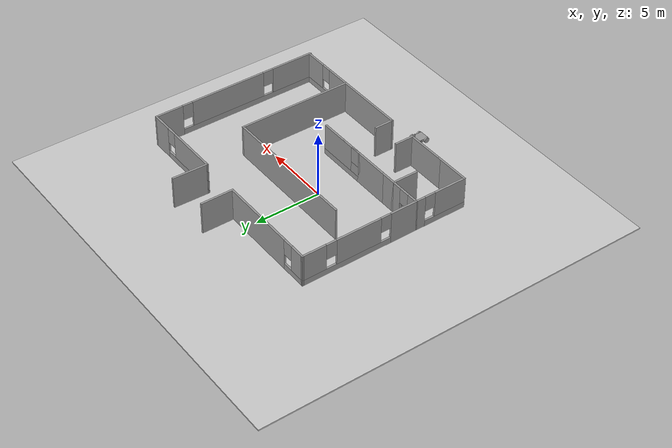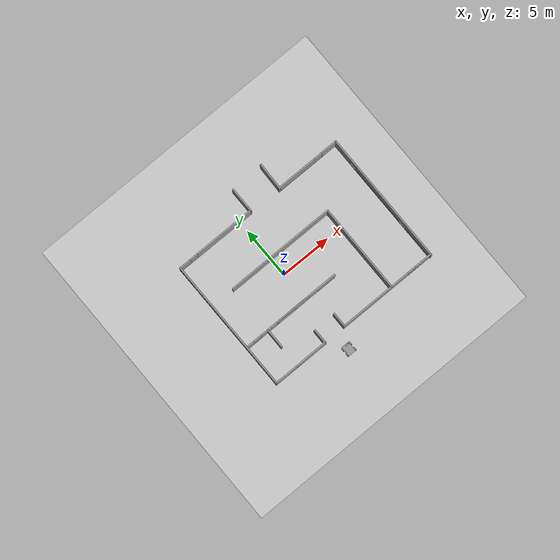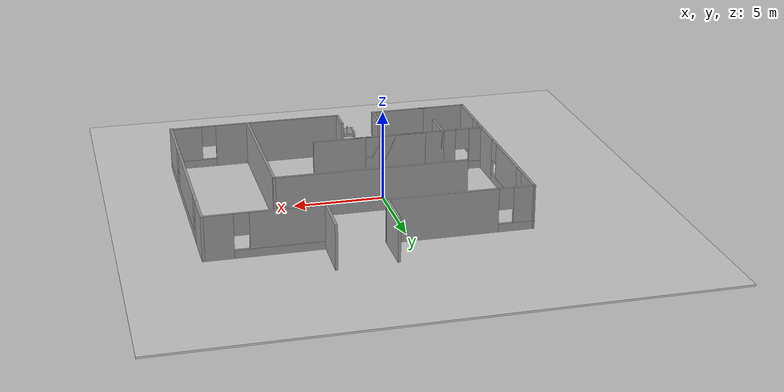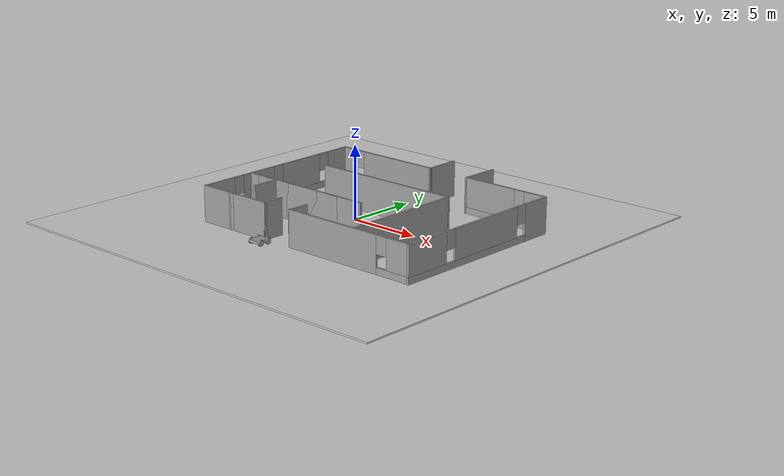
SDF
<?xml version="1.0" ?>

<sdf version="1.6">
  <world name="visualize_lidar_world">
    <physics name="1ms" type="ignored">
      <max_step_size>0.001</max_step_size>
      <real_time_factor>1.0</real_time_factor>
    </physics>
    <plugin
      filename="libignition-gazebo-physics-system.so"
      name="ignition::gazebo::systems::Physics">
    </plugin>
    <plugin
      filename="libignition-gazebo-sensors-system.so"
      name="ignition::gazebo::systems::Sensors">
      <render_engine>ogre2</render_engine>
    </plugin>
    <plugin
      filename="libignition-gazebo-scene-broadcaster-system.so"
      name="ignition::gazebo::systems::SceneBroadcaster">
    </plugin>

    <gui fullscreen="0">

      <!-- 3D scene -->
      <plugin filename="MinimalScene" name="3D View">
        <ignition-gui>
          <title>3D View</title>
          <property type="bool" key="showTitleBar">false</property>
          <property type="string" key="state">docked</property>
        </ignition-gui>

        <engine>ogre2</engine>
        <scene>scene</scene>
        <ambient_light>0.4 0.4 0.4</ambient_light>
        <background_color>0.8 0.8 0.8</background_color>
        <camera_pose>-6 0 6 0 0.5 0</camera_pose>
      </plugin>

      <!-- Plugins that add functionality to the scene -->
      <plugin filename="EntityContextMenuPlugin" name="Entity context menu">
        <ignition-gui>
          <property key="state" type="string">floating</property>
          <property key="width" type="double">5</property>
          <property key="height" type="double">5</property>
          <property key="showTitleBar" type="bool">false</property>
        </ignition-gui>
      </plugin>
      <plugin filename="GzSceneManager" name="Scene Manager">
        <ignition-gui>
          <property key="resizable" type="bool">false</property>
          <property key="width" type="double">5</property>
          <property key="height" type="double">5</property>
          <property key="state" type="string">floating</property>
          <property key="showTitleBar" type="bool">false</property>
        </ignition-gui>
      </plugin>
      <plugin filename="InteractiveViewControl" name="Interactive view control">
        <ignition-gui>
          <property key="resizable" type="bool">false</property>
          <property key="width" type="double">5</property>
          <property key="height" type="double">5</property>
          <property key="state" type="string">floating</property>
          <property key="showTitleBar" type="bool">false</property>
        </ignition-gui>
      </plugin>
      <plugin filename="CameraTracking" name="Camera Tracking">
        <ignition-gui>
          <property key="resizable" type="bool">false</property>
          <property key="width" type="double">5</property>
          <property key="height" type="double">5</property>
          <property key="state" type="string">floating</property>
          <property key="showTitleBar" type="bool">false</property>
        </ignition-gui>
      </plugin>
      <!-- World control -->
      <plugin filename="WorldControl" name="World control">
        <ignition-gui>
          <title>World control</title>
          <property type="bool" key="showTitleBar">false</property>
          <property type="bool" key="resizable">false</property>
          <property type="double" key="height">72</property>
          <property type="double" key="width">121</property>
          <property type="double" key="z">1</property>

          <property type="string" key="state">floating</property>
          <anchors target="3D View">
            <line own="left" target="left"/>
            <line own="bottom" target="bottom"/>
          </anchors>
        </ignition-gui>

        <play_pause>true</play_pause>
        <step>true</step>
        <start_paused>true</start_paused>
        <use_event>true</use_event>

      </plugin>

      <!-- World statistics -->
      <plugin filename="WorldStats" name="World stats">
        <ignition-gui>
          <title>World stats</title>
          <property type="bool" key="showTitleBar">false</property>
          <property type="bool" key="resizable">false</property>
          <property type="double" key="height">110</property>
          <property type="double" key="width">290</property>
          <property type="double" key="z">1</property>

          <property type="string" key="state">floating</property>
          <anchors target="3D View">
            <line own="right" target="right"/>
            <line own="bottom" target="bottom"/>
          </anchors>
        </ignition-gui>

        <sim_time>true</sim_time>
        <real_time>true</real_time>
        <real_time_factor>true</real_time_factor>
        <iterations>true</iterations>
      </plugin>

      <plugin filename="ImageDisplay" name="Image Display">
        <ignition-gui>
          <property key="state" type="string">docked</property>
        </ignition-gui>
      </plugin>

      <!-- Inspector -->
      <plugin filename="ComponentInspector" name="Component inspector">
        <ignition-gui>
          <property type="string" key="state">docked</property>
        </ignition-gui>
      </plugin>

      <!-- Entity tree -->
      <plugin filename="EntityTree" name="Entity tree">
        <ignition-gui>
          <property type="string" key="state">docked</property>
        </ignition-gui>
      </plugin>

      <plugin filename="VisualizeLidar" name="Visualize Lidar">
      </plugin>

    </gui>

    <light type="directional" name="sun">
      <cast_shadows>true</cast_shadows>
      <pose>0 0 10 0 0 0</pose>
      <diffuse>0.8 0.8 0.8 1</diffuse>
      <specular>0.2 0.2 0.2 1</specular>
      <attenuation>
        <range>1000</range>
        <constant>0.9</constant>
        <linear>0.01</linear>
        <quadratic>0.001</quadratic>
      </attenuation>
      <direction>-0.5 0.1 -0.9</direction>
    </light>

    <model name="ground_plane">
      <static>true</static>
      <link name="link">
        <collision name="collision">
          <geometry>
            <box>
              <size>30 30 0.1</size>
            </box>
          </geometry>
        </collision>
        <visual name="visual">
          <geometry>
            <box>
              <size>30 30 0.1</size>
            </box>
          </geometry>
          <material>
            <ambient>0.8 0.8 0.8 1</ambient>
            <diffuse>0.8 0.8 0.8 1</diffuse>
            <specular>0.8 0.8 0.8 1</specular>
          </material>
        </visual>
      </link>
    </model>

    <!-- My own robot -->
    <include>
        <pose>0 -8.5 1 0 0 1.57</pose>
        <uri>../models/land_robot</uri>
    </include>

    <!-- A playground -->

  <model name='Laberint'>
    <pose>2.05042 0.753959 0 0 -0 0</pose>
    <link name='Wall_0'>
      <collision name='Wall_0_Collision'>
        <geometry>
          <box>
            <size>3.27302 0.15 2.5</size>
          </box>
        </geometry>
        <pose>0 0 1.25 0 -0 0</pose>
      </collision>
      <visual name='Wall_0_Visual'>
        <pose>0 0 1.25 0 -0 0</pose>
        <geometry>
          <box>
            <size>3.27302 0.15 2.5</size>
          </box>
        </geometry>
        <material>
          <script>
            <uri>file://media/materials/scripts/gazebo.material</uri>
            <name>Gazebo/Grey</name>
          </script>
          <ambient>1 1 1 1</ambient>
        </material>
        <meta>
          <layer>0</layer>
        </meta>
      </visual>
      <pose>-4.74364 -7.69515 0 0 -0 0.003682</pose>
    </link>
    <link name='Wall_1'>
      <collision name='Wall_1_Collision'>
        <geometry>
          <box>
            <size>1.5 0.15 2.5</size>
          </box>
        </geometry>
        <pose>0 0 1.25 0 -0 0</pose>
      </collision>
      <visual name='Wall_1_Visual'>
        <pose>0 0 1.25 0 -0 0</pose>
        <geometry>
          <box>
            <size>1.5 0.15 2.5</size>
          </box>
        </geometry>
        <material>
          <script>
            <uri>file://media/materials/scripts/gazebo.material</uri>
            <name>Gazebo/Grey</name>
          </script>
          <ambient>1 1 1 1</ambient>
        </material>
        <meta>
          <layer>0</layer>
        </meta>
      </visual>
      <pose>-3.19963 -7.0144 0 0 -0 1.5708</pose>
    </link>
    <link name='Wall_10'>
      <collision name='Wall_10_Collision'>
        <geometry>
          <box>
            <size>4.5 0.15 2.5</size>
          </box>
        </geometry>
        <pose>0 0 1.25 0 -0 0</pose>
      </collision>
      <visual name='Wall_10_Visual'>
        <pose>0 0 1.25 0 -0 0</pose>
        <geometry>
          <box>
            <size>4.5 0.15 2.5</size>
          </box>
        </geometry>
        <material>
          <script>
            <uri>file://media/materials/scripts/gazebo.material</uri>
            <name>Gazebo/Grey</name>
          </script>
          <ambient>1 1 1 1</ambient>
        </material>
        <meta>
          <layer>0</layer>
        </meta>
      </visual>
      <pose>-3.02986 -3.71139 0 0 -0 3.14159</pose>
    </link>
    <link name='Wall_11'>
      <pose>-2.02986 -3.71139 0 0 -0 0</pose>
      <visual name='Wall_11_Visual_0'>
        <pose>-1.89341 0 1.25 0 -0 0</pose>
        <geometry>
          <box>
            <size>2.71319 0.15 2.5</size>
          </box>
        </geometry>
        <material>
          <script>
            <uri>file://media/materials/scripts/gazebo.material</uri>
            <name>Gazebo/Grey</name>
          </script>
          <ambient>1 1 1 1</ambient>
        </material>
        <meta>
          <layer>0</layer>
        </meta>
      </visual>
      <collision name='Wall_11_Collision_0'>
        <geometry>
          <box>
            <size>2.71319 0.15 2.5</size>
          </box>
        </geometry>
        <pose>-1.89341 0 1.25 0 -0 0</pose>
      </collision>
      <visual name='Wall_11_Visual_1'>
        <pose>1.35659 0 0.25 0 -0 0</pose>
        <geometry>
          <box>
            <size>3.78681 0.15 0.5</size>
          </box>
        </geometry>
        <material>
          <script>
            <uri>file://media/materials/scripts/gazebo.material</uri>
            <name>Gazebo/Grey</name>
          </script>
          <ambient>1 1 1 1</ambient>
        </material>
        <meta>
          <layer>0</layer>
        </meta>
      </visual>
      <collision name='Wall_11_Collision_1'>
        <geometry>
          <box>
            <size>3.78681 0.15 0.5</size>
          </box>
        </geometry>
        <pose>1.35659 0 0.25 0 -0 0</pose>
      </collision>
      <visual name='Wall_11_Visual_2'>
        <pose>1.75659 0 1.5 0 -0 0</pose>
        <geometry>
          <box>
            <size>2.98681 0.15 2</size>
          </box>
        </geometry>
        <material>
          <script>
            <uri>file://media/materials/scripts/gazebo.material</uri>
            <name>Gazebo/Grey</name>
          </script>
          <ambient>1 1 1 1</ambient>
        </material>
        <meta>
          <layer>0</layer>
        </meta>
      </visual>
      <collision name='Wall_11_Collision_2'>
        <geometry>
          <box>
            <size>2.98681 0.15 2</size>
          </box>
        </geometry>
        <pose>1.75659 0 1.5 0 -0 0</pose>
      </collision>
      <visual name='Wall_11_Visual_3'>
        <pose>-0.136812 0 1.9 0 -0 0</pose>
        <geometry>
          <box>
            <size>0.8 0.15 1.2</size>
          </box>
        </geometry>
        <material>
          <script>
            <uri>file://media/materials/scripts/gazebo.material</uri>
            <name>Gazebo/Grey</name>
          </script>
          <ambient>1 1 1 1</ambient>
        </material>
        <meta>
          <layer>0</layer>
        </meta>
      </visual>
      <collision name='Wall_11_Collision_3'>
        <geometry>
          <box>
            <size>0.8 0.15 1.2</size>
          </box>
        </geometry>
        <pose>-0.136812 0 1.9 0 -0 0</pose>
      </collision>
    </link>
    <link name='Wall_14'>
      <collision name='Wall_14_Collision'>
        <geometry>
          <box>
            <size>1.25 0.15 2.5</size>
          </box>
        </geometry>
        <pose>0 0 1.25 0 -0 0</pose>
      </collision>
      <visual name='Wall_14_Visual'>
        <pose>0 0 1.25 0 -0 0</pose>
        <geometry>
          <box>
            <size>1.25 0.15 2.5</size>
          </box>
        </geometry>
        <material>
          <script>
            <uri>file://media/materials/scripts/gazebo.material</uri>
            <name>Gazebo/Grey</name>
          </script>
          <ambient>1 1 1 1</ambient>
        </material>
        <meta>
          <layer>0</layer>
        </meta>
      </visual>
      <pose>-5.75486 -3.71139 0 0 -0 3.14159</pose>
    </link>
    <link name='Wall_15'>
      <collision name='Wall_15_Collision'>
        <geometry>
          <box>
            <size>2 0.15 2.5</size>
          </box>
        </geometry>
        <pose>0 0 1.25 0 -0 0</pose>
      </collision>
      <visual name='Wall_15_Visual'>
        <pose>0 0 1.25 0 -0 0</pose>
        <geometry>
          <box>
            <size>2 0.15 2.5</size>
          </box>
        </geometry>
        <material>
          <script>
            <uri>file://media/materials/scripts/gazebo.material</uri>
            <name>Gazebo/Grey</name>
          </script>
          <ambient>1 1 1 1</ambient>
        </material>
        <meta>
          <layer>0</layer>
        </meta>
      </visual>
      <pose>-6.30486 -4.63639 0 0 -0 -1.5708</pose>
    </link>
    <link name='Wall_17'>
      <pose>-7.47986 -3.71139 0 0 -0 3.14159</pose>
      <visual name='Wall_17_Visual_0'>
        <pose>-0.833139 0 1.25 0 -0 0</pose>
        <geometry>
          <box>
            <size>0.833722 0.15 2.5</size>
          </box>
        </geometry>
        <material>
          <script>
            <uri>file://media/materials/scripts/gazebo.material</uri>
            <name>Gazebo/Grey</name>
          </script>
          <ambient>1 1 1 1</ambient>
        </material>
        <meta>
          <layer>0</layer>
        </meta>
      </visual>
      <collision name='Wall_17_Collision_0'>
        <geometry>
          <box>
            <size>0.833722 0.15 2.5</size>
          </box>
        </geometry>
        <pose>-0.833139 0 1.25 0 -0 0</pose>
      </collision>
      <visual name='Wall_17_Visual_1'>
        <pose>0.416861 0 0.25 0 -0 0</pose>
        <geometry>
          <box>
            <size>1.66628 0.15 0.5</size>
          </box>
        </geometry>
        <material>
          <script>
            <uri>file://media/materials/scripts/gazebo.material</uri>
            <name>Gazebo/Grey</name>
          </script>
          <ambient>1 1 1 1</ambient>
        </material>
        <meta>
          <layer>0</layer>
        </meta>
      </visual>
      <collision name='Wall_17_Collision_1'>
        <geometry>
          <box>
            <size>1.66628 0.15 0.5</size>
          </box>
        </geometry>
        <pose>0.416861 0 0.25 0 -0 0</pose>
      </collision>
      <visual name='Wall_17_Visual_2'>
        <pose>0.816861 0 1.5 0 -0 0</pose>
        <geometry>
          <box>
            <size>0.866278 0.15 2</size>
          </box>
        </geometry>
        <material>
          <script>
            <uri>file://media/materials/scripts/gazebo.material</uri>
            <name>Gazebo/Grey</name>
          </script>
          <ambient>1 1 1 1</ambient>
        </material>
        <meta>
          <layer>0</layer>
        </meta>
      </visual>
      <collision name='Wall_17_Collision_2'>
        <geometry>
          <box>
            <size>0.866278 0.15 2</size>
          </box>
        </geometry>
        <pose>0.816861 0 1.5 0 -0 0</pose>
      </collision>
      <visual name='Wall_17_Visual_3'>
        <pose>-0.016278 0 1.9 0 -0 0</pose>
        <geometry>
          <box>
            <size>0.8 0.15 1.2</size>
          </box>
        </geometry>
        <material>
          <script>
            <uri>file://media/materials/scripts/gazebo.material</uri>
            <name>Gazebo/Grey</name>
          </script>
          <ambient>1 1 1 1</ambient>
        </material>
        <meta>
          <layer>0</layer>
        </meta>
      </visual>
      <collision name='Wall_17_Collision_3'>
        <geometry>
          <box>
            <size>0.8 0.15 1.2</size>
          </box>
        </geometry>
        <pose>-0.016278 0 1.9 0 -0 0</pose>
      </collision>
    </link>
    <link name='Wall_18'>
      <pose>-8.65486 -5.7032 0 0 -0 -1.5708</pose>
      <visual name='Wall_18_Visual_0'>
        <pose>-1.6633 0 1.25 0 -0 0</pose>
        <geometry>
          <box>
            <size>0.807023 0.15 2.5</size>
          </box>
        </geometry>
        <material>
          <script>
            <uri>file://media/materials/scripts/gazebo.material</uri>
            <name>Gazebo/Grey</name>
          </script>
          <ambient>1 1 1 1</ambient>
        </material>
        <meta>
          <layer>0</layer>
        </meta>
      </visual>
      <collision name='Wall_18_Collision_0'>
        <geometry>
          <box>
            <size>0.807023 0.15 2.5</size>
          </box>
        </geometry>
        <pose>-1.6633 0 1.25 0 -0 0</pose>
      </collision>
      <visual name='Wall_18_Visual_1'>
        <pose>0.403511 0 0.25 0 -0 0</pose>
        <geometry>
          <box>
            <size>3.3266 0.15 0.5</size>
          </box>
        </geometry>
        <material>
          <script>
            <uri>file://media/materials/scripts/gazebo.material</uri>
            <name>Gazebo/Grey</name>
          </script>
          <ambient>1 1 1 1</ambient>
        </material>
        <meta>
          <layer>0</layer>
        </meta>
      </visual>
      <collision name='Wall_18_Collision_1'>
        <geometry>
          <box>
            <size>3.3266 0.15 0.5</size>
          </box>
        </geometry>
        <pose>0.403511 0 0.25 0 -0 0</pose>
      </collision>
      <visual name='Wall_18_Visual_2'>
        <pose>0.803511 0 1.5 0 -0 0</pose>
        <geometry>
          <box>
            <size>2.5266 0.15 2</size>
          </box>
        </geometry>
        <material>
          <script>
            <uri>file://media/materials/scripts/gazebo.material</uri>
            <name>Gazebo/Grey</name>
          </script>
          <ambient>1 1 1 1</ambient>
        </material>
        <meta>
          <layer>0</layer>
        </meta>
      </visual>
      <collision name='Wall_18_Collision_2'>
        <geometry>
          <box>
            <size>2.5266 0.15 2</size>
          </box>
        </geometry>
        <pose>0.803511 0 1.5 0 -0 0</pose>
      </collision>
      <visual name='Wall_18_Visual_3'>
        <pose>-0.859789 0 1.9 0 -0 0</pose>
        <geometry>
          <box>
            <size>0.8 0.15 1.2</size>
          </box>
        </geometry>
        <material>
          <script>
            <uri>file://media/materials/scripts/gazebo.material</uri>
            <name>Gazebo/Grey</name>
          </script>
          <ambient>1 1 1 1</ambient>
        </material>
        <meta>
          <layer>0</layer>
        </meta>
      </visual>
      <collision name='Wall_18_Collision_3'>
        <geometry>
          <box>
            <size>0.8 0.15 1.2</size>
          </box>
        </geometry>
        <pose>-0.859789 0 1.9 0 -0 0</pose>
      </collision>
    </link>
    <link name='Wall_19'>
      <collision name='Wall_19_Collision'>
        <geometry>
          <box>
            <size>2.75 0.15 2.5</size>
          </box>
        </geometry>
        <pose>0 0 1.25 0 -0 0</pose>
      </collision>
      <visual name='Wall_19_Visual'>
        <pose>0 0 1.25 0 -0 0</pose>
        <geometry>
          <box>
            <size>2.75 0.15 2.5</size>
          </box>
        </geometry>
        <material>
          <script>
            <uri>file://media/materials/scripts/gazebo.material</uri>
            <name>Gazebo/Grey</name>
          </script>
          <ambient>1 1 1 1</ambient>
        </material>
        <meta>
          <layer>0</layer>
        </meta>
      </visual>
      <pose>-7.35486 -7.70073 0 0 -0 0</pose>
    </link>
    <link name='Wall_21'>
      <collision name='Wall_21_Collision'>
        <geometry>
          <box>
            <size>8.75 0.15 2.5</size>
          </box>
        </geometry>
        <pose>0 0 1.25 0 -0 0</pose>
      </collision>
      <visual name='Wall_21_Visual'>
        <pose>0 0 1.25 0 -0 0</pose>
        <geometry>
          <box>
            <size>8.75 0.15 2.5</size>
          </box>
        </geometry>
        <material>
          <script>
            <uri>file://media/materials/scripts/gazebo.material</uri>
            <name>Gazebo/Grey</name>
          </script>
          <ambient>1 1 1 1</ambient>
        </material>
        <meta>
          <layer>0</layer>
        </meta>
      </visual>
      <pose>4.28676 -3.34222 0 0 -0 1.5708</pose>
    </link>
    <link name='Wall_23'>
      <collision name='Wall_23_Collision'>
        <geometry>
          <box>
            <size>10.75 0.15 2.5</size>
          </box>
        </geometry>
        <pose>0 0 1.25 0 -0 0</pose>
      </collision>
      <visual name='Wall_23_Visual'>
        <pose>0 0 1.25 0 -0 0</pose>
        <geometry>
          <box>
            <size>10.75 0.15 2.5</size>
          </box>
        </geometry>
        <material>
          <script>
            <uri>file://media/materials/scripts/gazebo.material</uri>
            <name>Gazebo/Grey</name>
          </script>
          <ambient>1 1 1 1</ambient>
        </material>
        <meta>
          <layer>0</layer>
        </meta>
      </visual>
      <pose>-1.01324 0.957785 0 0 -0 3.14159</pose>
    </link>
    <link name='Wall_25'>
      <pose>-8.67483 0.766379 0 0 -0 1.57526</pose>
      <visual name='Wall_25_Visual_0'>
        <pose>-3.49076 0 1.25 0 -0 0</pose>
        <geometry>
          <box>
            <size>2.12409 0.15 2.5</size>
          </box>
        </geometry>
        <material>
          <script>
            <uri>file://media/materials/scripts/gazebo.material</uri>
            <name>Gazebo/Grey</name>
          </script>
          <ambient>1 1 1 1</ambient>
        </material>
        <meta>
          <layer>0</layer>
        </meta>
      </visual>
      <collision name='Wall_25_Collision_0'>
        <geometry>
          <box>
            <size>2.12409 0.15 2.5</size>
          </box>
        </geometry>
        <pose>-3.49076 0 1.25 0 -0 0</pose>
      </collision>
      <visual name='Wall_25_Visual_1'>
        <pose>1.06204 0 0.25 0 -0 0</pose>
        <geometry>
          <box>
            <size>6.98152 0.15 0.5</size>
          </box>
        </geometry>
        <material>
          <script>
            <uri>file://media/materials/scripts/gazebo.material</uri>
            <name>Gazebo/Grey</name>
          </script>
          <ambient>1 1 1 1</ambient>
        </material>
        <meta>
          <layer>0</layer>
        </meta>
      </visual>
      <collision name='Wall_25_Collision_1'>
        <geometry>
          <box>
            <size>6.98152 0.15 0.5</size>
          </box>
        </geometry>
        <pose>1.06204 0 0.25 0 -0 0</pose>
      </collision>
      <visual name='Wall_25_Visual_2'>
        <pose>0.121712 0 1.5 0 -0 0</pose>
        <geometry>
          <box>
            <size>3.50086 0.15 2</size>
          </box>
        </geometry>
        <material>
          <script>
            <uri>file://media/materials/scripts/gazebo.material</uri>
            <name>Gazebo/Grey</name>
          </script>
          <ambient>1 1 1 1</ambient>
        </material>
        <meta>
          <layer>0</layer>
        </meta>
      </visual>
      <collision name='Wall_25_Collision_2'>
        <geometry>
          <box>
            <size>3.50086 0.15 2</size>
          </box>
        </geometry>
        <pose>0.121712 0 1.5 0 -0 0</pose>
      </collision>
      <visual name='Wall_25_Visual_3'>
        <pose>3.61247 0 1.5 0 -0 0</pose>
        <geometry>
          <box>
            <size>1.88066 0.15 2</size>
          </box>
        </geometry>
        <material>
          <script>
            <uri>file://media/materials/scripts/gazebo.material</uri>
            <name>Gazebo/Grey</name>
          </script>
          <ambient>1 1 1 1</ambient>
        </material>
        <meta>
          <layer>0</layer>
        </meta>
      </visual>
      <collision name='Wall_25_Collision_3'>
        <geometry>
          <box>
            <size>1.88066 0.15 2</size>
          </box>
        </geometry>
        <pose>3.61247 0 1.5 0 -0 0</pose>
      </collision>
      <visual name='Wall_25_Visual_4'>
        <pose>-2.02872 0 1.9 0 -0 0</pose>
        <geometry>
          <box>
            <size>0.8 0.15 1.2</size>
          </box>
        </geometry>
        <material>
          <script>
            <uri>file://media/materials/scripts/gazebo.material</uri>
            <name>Gazebo/Grey</name>
          </script>
          <ambient>1 1 1 1</ambient>
        </material>
        <meta>
          <layer>0</layer>
        </meta>
      </visual>
      <collision name='Wall_25_Collision_4'>
        <geometry>
          <box>
            <size>0.8 0.15 1.2</size>
          </box>
        </geometry>
        <pose>-2.02872 0 1.9 0 -0 0</pose>
      </collision>
      <visual name='Wall_25_Visual_5'>
        <pose>2.27214 0 1.9 0 -0 0</pose>
        <geometry>
          <box>
            <size>0.8 0.15 1.2</size>
          </box>
        </geometry>
        <material>
          <script>
            <uri>file://media/materials/scripts/gazebo.material</uri>
            <name>Gazebo/Grey</name>
          </script>
          <ambient>1 1 1 1</ambient>
        </material>
        <meta>
          <layer>0</layer>
        </meta>
      </visual>
      <collision name='Wall_25_Collision_5'>
        <geometry>
          <box>
            <size>0.8 0.15 1.2</size>
          </box>
        </geometry>
        <pose>2.27214 0 1.9 0 -0 0</pose>
      </collision>
    </link>
    <link name='Wall_28'>
      <pose>8.69514 -1.28639 0 0 -0 -1.5708</pose>
      <visual name='Wall_28_Visual_0'>
        <pose>-5.42418 0 1.25 0 -0 0</pose>
        <geometry>
          <box>
            <size>2.15163 0.15 2.5</size>
          </box>
        </geometry>
        <material>
          <script>
            <uri>file://media/materials/scripts/gazebo.material</uri>
            <name>Gazebo/Grey</name>
          </script>
          <ambient>1 1 1 1</ambient>
        </material>
        <meta>
          <layer>0</layer>
        </meta>
      </visual>
      <collision name='Wall_28_Collision_0'>
        <geometry>
          <box>
            <size>2.15163 0.15 2.5</size>
          </box>
        </geometry>
        <pose>-5.42418 0 1.25 0 -0 0</pose>
      </collision>
      <visual name='Wall_28_Visual_1'>
        <pose>1.07582 0 0.25 0 -0 0</pose>
        <geometry>
          <box>
            <size>10.8484 0.15 0.5</size>
          </box>
        </geometry>
        <material>
          <script>
            <uri>file://media/materials/scripts/gazebo.material</uri>
            <name>Gazebo/Grey</name>
          </script>
          <ambient>1 1 1 1</ambient>
        </material>
        <meta>
          <layer>0</layer>
        </meta>
      </visual>
      <collision name='Wall_28_Collision_1'>
        <geometry>
          <box>
            <size>10.8484 0.15 0.5</size>
          </box>
        </geometry>
        <pose>1.07582 0 0.25 0 -0 0</pose>
      </collision>
      <visual name='Wall_28_Visual_2'>
        <pose>-0.59885 0 1.5 0 -0 0</pose>
        <geometry>
          <box>
            <size>5.89903 0.15 2</size>
          </box>
        </geometry>
        <material>
          <script>
            <uri>file://media/materials/scripts/gazebo.material</uri>
            <name>Gazebo/Grey</name>
          </script>
          <ambient>1 1 1 1</ambient>
        </material>
        <meta>
          <layer>0</layer>
        </meta>
      </visual>
      <collision name='Wall_28_Collision_2'>
        <geometry>
          <box>
            <size>5.89903 0.15 2</size>
          </box>
        </geometry>
        <pose>-0.59885 0 1.5 0 -0 0</pose>
      </collision>
      <visual name='Wall_28_Visual_3'>
        <pose>4.82533 0 1.5 0 -0 0</pose>
        <geometry>
          <box>
            <size>3.34933 0.15 2</size>
          </box>
        </geometry>
        <material>
          <script>
            <uri>file://media/materials/scripts/gazebo.material</uri>
            <name>Gazebo/Grey</name>
          </script>
          <ambient>1 1 1 1</ambient>
        </material>
        <meta>
          <layer>0</layer>
        </meta>
      </visual>
      <collision name='Wall_28_Collision_3'>
        <geometry>
          <box>
            <size>3.34933 0.15 2</size>
          </box>
        </geometry>
        <pose>4.82533 0 1.5 0 -0 0</pose>
      </collision>
      <visual name='Wall_28_Visual_4'>
        <pose>-3.94837 0 1.9 0 -0 0</pose>
        <geometry>
          <box>
            <size>0.8 0.15 1.2</size>
          </box>
        </geometry>
        <material>
          <script>
            <uri>file://media/materials/scripts/gazebo.material</uri>
            <name>Gazebo/Grey</name>
          </script>
          <ambient>1 1 1 1</ambient>
        </material>
        <meta>
          <layer>0</layer>
        </meta>
      </visual>
      <collision name='Wall_28_Collision_4'>
        <geometry>
          <box>
            <size>0.8 0.15 1.2</size>
          </box>
        </geometry>
        <pose>-3.94837 0 1.9 0 -0 0</pose>
      </collision>
      <visual name='Wall_28_Visual_5'>
        <pose>2.75067 0 1.9 0 -0 0</pose>
        <geometry>
          <box>
            <size>0.8 0.15 1.2</size>
          </box>
        </geometry>
        <material>
          <script>
            <uri>file://media/materials/scripts/gazebo.material</uri>
            <name>Gazebo/Grey</name>
          </script>
          <ambient>1 1 1 1</ambient>
        </material>
        <meta>
          <layer>0</layer>
        </meta>
      </visual>
      <collision name='Wall_28_Collision_5'>
        <geometry>
          <box>
            <size>0.8 0.15 1.2</size>
          </box>
        </geometry>
        <pose>2.75067 0 1.9 0 -0 0</pose>
      </collision>
    </link>
    <link name='Wall_3'>
      <collision name='Wall_3_Collision'>
        <geometry>
          <box>
            <size>1.5 0.15 2.5</size>
          </box>
        </geometry>
        <pose>0 0 1.25 0 -0 0</pose>
      </collision>
      <visual name='Wall_3_Visual'>
        <pose>0 0 1.25 0 -0 0</pose>
        <geometry>
          <box>
            <size>1.5 0.15 2.5</size>
          </box>
        </geometry>
        <material>
          <script>
            <uri>file://media/materials/scripts/gazebo.material</uri>
            <name>Gazebo/Grey</name>
          </script>
          <ambient>1 1 1 1</ambient>
        </material>
        <meta>
          <layer>0</layer>
        </meta>
      </visual>
      <pose>-1.00921 -6.97938 0 0 -0 -1.5708</pose>
    </link>
    <link name='Wall_31'>
      <pose>5.52014 5.13861 0 0 -0 3.14159</pose>
      <visual name='Wall_31_Visual_0'>
        <pose>-2.41938 0 1.25 0 -0 0</pose>
        <geometry>
          <box>
            <size>1.66123 0.15 2.5</size>
          </box>
        </geometry>
        <material>
          <script>
            <uri>file://media/materials/scripts/gazebo.material</uri>
            <name>Gazebo/Grey</name>
          </script>
          <ambient>1 1 1 1</ambient>
        </material>
        <meta>
          <layer>0</layer>
        </meta>
      </visual>
      <collision name='Wall_31_Collision_0'>
        <geometry>
          <box>
            <size>1.66123 0.15 2.5</size>
          </box>
        </geometry>
        <pose>-2.41938 0 1.25 0 -0 0</pose>
      </collision>
      <visual name='Wall_31_Visual_1'>
        <pose>0.830617 0 0.25 0 -0 0</pose>
        <geometry>
          <box>
            <size>4.83877 0.15 0.5</size>
          </box>
        </geometry>
        <material>
          <script>
            <uri>file://media/materials/scripts/gazebo.material</uri>
            <name>Gazebo/Grey</name>
          </script>
          <ambient>1 1 1 1</ambient>
        </material>
        <meta>
          <layer>0</layer>
        </meta>
      </visual>
      <collision name='Wall_31_Collision_1'>
        <geometry>
          <box>
            <size>4.83877 0.15 0.5</size>
          </box>
        </geometry>
        <pose>0.830617 0 0.25 0 -0 0</pose>
      </collision>
      <visual name='Wall_31_Visual_2'>
        <pose>1.23062 0 1.5 0 -0 0</pose>
        <geometry>
          <box>
            <size>4.03877 0.15 2</size>
          </box>
        </geometry>
        <material>
          <script>
            <uri>file://media/materials/scripts/gazebo.material</uri>
            <name>Gazebo/Grey</name>
          </script>
          <ambient>1 1 1 1</ambient>
        </material>
        <meta>
          <layer>0</layer>
        </meta>
      </visual>
      <collision name='Wall_31_Collision_2'>
        <geometry>
          <box>
            <size>4.03877 0.15 2</size>
          </box>
        </geometry>
        <pose>1.23062 0 1.5 0 -0 0</pose>
      </collision>
      <visual name='Wall_31_Visual_3'>
        <pose>-1.18877 0 1.9 0 -0 0</pose>
        <geometry>
          <box>
            <size>0.8 0.15 1.2</size>
          </box>
        </geometry>
        <material>
          <script>
            <uri>file://media/materials/scripts/gazebo.material</uri>
            <name>Gazebo/Grey</name>
          </script>
          <ambient>1 1 1 1</ambient>
        </material>
        <meta>
          <layer>0</layer>
        </meta>
      </visual>
      <collision name='Wall_31_Collision_3'>
        <geometry>
          <box>
            <size>0.8 0.15 1.2</size>
          </box>
        </geometry>
        <pose>-1.18877 0 1.9 0 -0 0</pose>
      </collision>
    </link>
    <link name='Wall_33'>
      <pose>-4.76102 5.22985 0 0 -0 3.13796</pose>
      <visual name='Wall_33_Visual_0'>
        <pose>-0.994905 0 1.25 0 -0 0</pose>
        <geometry>
          <box>
            <size>6.0278 0.15 2.5</size>
          </box>
        </geometry>
        <material>
          <script>
            <uri>file://media/materials/scripts/gazebo.material</uri>
            <name>Gazebo/Grey</name>
          </script>
          <ambient>1 1 1 1</ambient>
        </material>
        <meta>
          <layer>0</layer>
        </meta>
      </visual>
      <collision name='Wall_33_Collision_0'>
        <geometry>
          <box>
            <size>6.0278 0.15 2.5</size>
          </box>
        </geometry>
        <pose>-0.994905 0 1.25 0 -0 0</pose>
      </collision>
      <visual name='Wall_33_Visual_1'>
        <pose>3.0139 0 0.25 0 -0 0</pose>
        <geometry>
          <box>
            <size>1.98981 0.15 0.5</size>
          </box>
        </geometry>
        <material>
          <script>
            <uri>file://media/materials/scripts/gazebo.material</uri>
            <name>Gazebo/Grey</name>
          </script>
          <ambient>1 1 1 1</ambient>
        </material>
        <meta>
          <layer>0</layer>
        </meta>
      </visual>
      <collision name='Wall_33_Collision_1'>
        <geometry>
          <box>
            <size>1.98981 0.15 0.5</size>
          </box>
        </geometry>
        <pose>3.0139 0 0.25 0 -0 0</pose>
      </collision>
      <visual name='Wall_33_Visual_2'>
        <pose>3.4139 0 1.5 0 -0 0</pose>
        <geometry>
          <box>
            <size>1.18981 0.15 2</size>
          </box>
        </geometry>
        <material>
          <script>
            <uri>file://media/materials/scripts/gazebo.material</uri>
            <name>Gazebo/Grey</name>
          </script>
          <ambient>1 1 1 1</ambient>
        </material>
        <meta>
          <layer>0</layer>
        </meta>
      </visual>
      <collision name='Wall_33_Collision_2'>
        <geometry>
          <box>
            <size>1.18981 0.15 2</size>
          </box>
        </geometry>
        <pose>3.4139 0 1.5 0 -0 0</pose>
      </collision>
      <visual name='Wall_33_Visual_3'>
        <pose>2.419 0 1.9 0 -0 0</pose>
        <geometry>
          <box>
            <size>0.8 0.15 1.2</size>
          </box>
        </geometry>
        <material>
          <script>
            <uri>file://media/materials/scripts/gazebo.material</uri>
            <name>Gazebo/Grey</name>
          </script>
          <ambient>1 1 1 1</ambient>
        </material>
        <meta>
          <layer>0</layer>
        </meta>
      </visual>
      <collision name='Wall_33_Collision_3'>
        <geometry>
          <box>
            <size>0.8 0.15 1.2</size>
          </box>
        </geometry>
        <pose>2.419 0 1.9 0 -0 0</pose>
      </collision>
    </link>
    <link name='Wall_35'>
      <collision name='Wall_35_Collision'>
        <geometry>
          <box>
            <size>2.5 0.15 2.5</size>
          </box>
        </geometry>
        <pose>0 0 1.25 0 -0 0</pose>
      </collision>
      <visual name='Wall_35_Visual'>
        <pose>0 0 1.25 0 -0 0</pose>
        <geometry>
          <box>
            <size>2.5 0.15 2.5</size>
          </box>
        </geometry>
        <material>
          <script>
            <uri>file://media/materials/scripts/gazebo.material</uri>
            <name>Gazebo/Grey</name>
          </script>
          <ambient>1 1 1 1</ambient>
        </material>
        <meta>
          <layer>0</layer>
        </meta>
      </visual>
      <pose>-0.827241 6.39055 0 0 -0 1.5708</pose>
    </link>
    <link name='Wall_37'>
      <collision name='Wall_37_Collision'>
        <geometry>
          <box>
            <size>2.72173 0.15 2.5</size>
          </box>
        </geometry>
        <pose>0 0 1.25 0 -0 0</pose>
      </collision>
      <visual name='Wall_37_Visual'>
        <pose>0 0 1.25 0 -0 0</pose>
        <geometry>
          <box>
            <size>2.72173 0.15 2.5</size>
          </box>
        </geometry>
        <material>
          <script>
            <uri>file://media/materials/scripts/gazebo.material</uri>
            <name>Gazebo/Grey</name>
          </script>
          <ambient>1 1 1 1</ambient>
        </material>
        <meta>
          <layer>0</layer>
        </meta>
      </visual>
      <pose>2.37797 6.42406 0 0 -0 1.54526</pose>
    </link>
    <link name='Wall_4'>
      <collision name='Wall_4_Collision'>
        <geometry>
          <box>
            <size>0.15 0.15 2.5</size>
          </box>
        </geometry>
        <pose>0 0 1.25 0 -0 0</pose>
      </collision>
      <visual name='Wall_4_Visual'>
        <pose>0 0 1.25 0 -0 0</pose>
        <geometry>
          <box>
            <size>0.15 0.15 2.5</size>
          </box>
        </geometry>
        <material>
          <script>
            <uri>file://media/materials/scripts/gazebo.material</uri>
            <name>Gazebo/Grey</name>
          </script>
          <ambient>1 1 1 1</ambient>
        </material>
        <meta>
          <layer>0</layer>
        </meta>
      </visual>
      <pose>-1.01493 -7.65438 0 0 -0 0</pose>
    </link>
    <link name='Wall_7'>
      <pose>3.81338 -7.65714 0 0 -0 0</pose>
      <visual name='Wall_7_Visual_0'>
        <pose>-1.26404 0 1.25 0 -0 0</pose>
        <geometry>
          <box>
            <size>7.22192 0.15 2.5</size>
          </box>
        </geometry>
        <material>
          <script>
            <uri>file://media/materials/scripts/gazebo.material</uri>
            <name>Gazebo/Grey</name>
          </script>
          <ambient>1 1 1 1</ambient>
        </material>
        <meta>
          <layer>0</layer>
        </meta>
      </visual>
      <collision name='Wall_7_Collision_0'>
        <geometry>
          <box>
            <size>7.22192 0.15 2.5</size>
          </box>
        </geometry>
        <pose>-1.26404 0 1.25 0 -0 0</pose>
      </collision>
      <visual name='Wall_7_Visual_1'>
        <pose>3.61096 0 0.25 0 -0 0</pose>
        <geometry>
          <box>
            <size>2.52808 0.15 0.5</size>
          </box>
        </geometry>
        <material>
          <script>
            <uri>file://media/materials/scripts/gazebo.material</uri>
            <name>Gazebo/Grey</name>
          </script>
          <ambient>1 1 1 1</ambient>
        </material>
        <meta>
          <layer>0</layer>
        </meta>
      </visual>
      <collision name='Wall_7_Collision_1'>
        <geometry>
          <box>
            <size>2.52808 0.15 0.5</size>
          </box>
        </geometry>
        <pose>3.61096 0 0.25 0 -0 0</pose>
      </collision>
      <visual name='Wall_7_Visual_2'>
        <pose>4.01096 0 1.5 0 -0 0</pose>
        <geometry>
          <box>
            <size>1.72808 0.15 2</size>
          </box>
        </geometry>
        <material>
          <script>
            <uri>file://media/materials/scripts/gazebo.material</uri>
            <name>Gazebo/Grey</name>
          </script>
          <ambient>1 1 1 1</ambient>
        </material>
        <meta>
          <layer>0</layer>
        </meta>
      </visual>
      <collision name='Wall_7_Collision_2'>
        <geometry>
          <box>
            <size>1.72808 0.15 2</size>
          </box>
        </geometry>
        <pose>4.01096 0 1.5 0 -0 0</pose>
      </collision>
      <visual name='Wall_7_Visual_3'>
        <pose>2.74692 0 1.9 0 -0 0</pose>
        <geometry>
          <box>
            <size>0.8 0.15 1.2</size>
          </box>
        </geometry>
        <material>
          <script>
            <uri>file://media/materials/scripts/gazebo.material</uri>
            <name>Gazebo/Grey</name>
          </script>
          <ambient>1 1 1 1</ambient>
        </material>
        <meta>
          <layer>0</layer>
        </meta>
      </visual>
      <collision name='Wall_7_Collision_3'>
        <geometry>
          <box>
            <size>0.8 0.15 1.2</size>
          </box>
        </geometry>
        <pose>2.74692 0 1.9 0 -0 0</pose>
      </collision>
    </link>
    <static>1</static>
  </model>

  </world>
</sdf>
